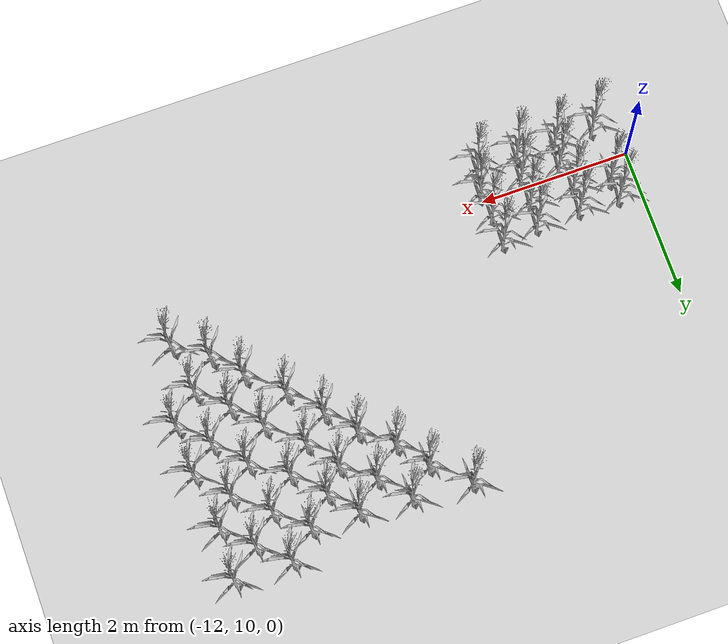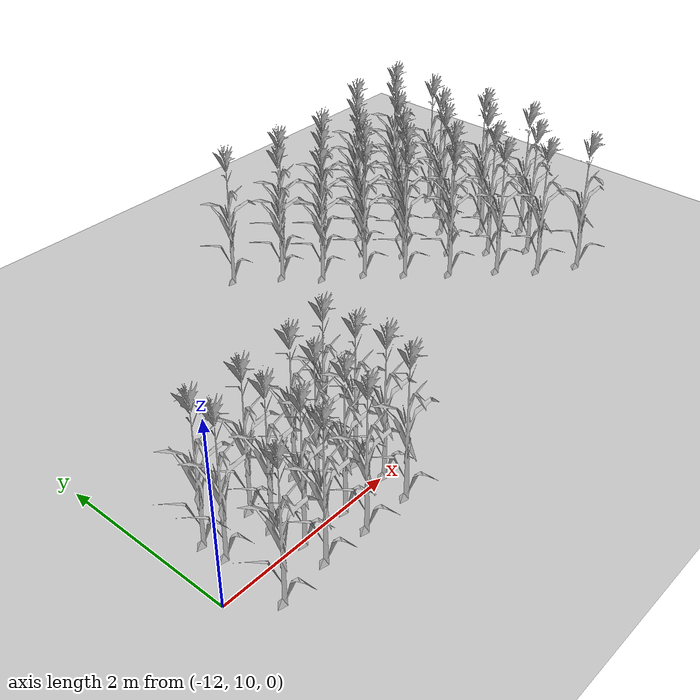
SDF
<sdf version="1.7">
 <world name="farmland_world">
  <model name="ground_plane">
   <static>1</static>
   <link name="link">
    <collision name="collision">
     <geometry><plane><normal>0 0 1</normal><size>40.0 40.0</size></plane></geometry>
     <surface><friction><ode><mu>100</mu><mu2>50</mu2></ode></friction></surface>
    </collision>
    <visual name="visual">
     <cast_shadows>0</cast_shadows>
     <geometry><plane><normal>0 0 1</normal><size>40.0 40.0</size></plane></geometry>
     <material>
      <script><uri>file://media/materials/scripts/gazebo.material</uri><name>Gazebo/Grey</name></script>
     </material>
    </visual>
   </link>
  </model>
  <model name="tree_3_29">
   <static>1</static>
   <link name="link">
    <collision name="collision">
     <geometry><mesh><uri>model://Corn_low_poly/corn.obj</uri><scale>1 1 1</scale></mesh></geometry>
     <surface><friction><ode><mu>100</mu><mu2>50</mu2></ode></friction></surface>
    </collision>
    <visual name="visual">
     <geometry><mesh><uri>model://Corn_low_poly/corn.obj</uri><scale>1 1 1</scale></mesh></geometry>
    </visual>
   </link>
   <pose>-5.566226905447198 10.631227501792312 0 0 0 0</pose>
  </model>
  <model name="tree_3_30">
   <static>1</static>
   <link name="link">
    <collision name="collision">
     <geometry><mesh><uri>model://Corn_low_poly/corn.obj</uri><scale>1 1 1</scale></mesh></geometry>
     <surface><friction><ode><mu>100</mu><mu2>50</mu2></ode></friction></surface>
    </collision>
    <visual name="visual">
     <geometry><mesh><uri>model://Corn_low_poly/corn.obj</uri><scale>1 1 1</scale></mesh></geometry>
    </visual>
   </link>
   <pose>-5.993640951671233 10.929727641760392 0 0 0 0</pose>
  </model>
  <model name="tree_3_31">
   <static>1</static>
   <link name="link">
    <collision name="collision">
     <geometry><mesh><uri>model://Corn_low_poly/corn.obj</uri><scale>1 1 1</scale></mesh></geometry>
     <surface><friction><ode><mu>100</mu><mu2>50</mu2></ode></friction></surface>
    </collision>
    <visual name="visual">
     <geometry><mesh><uri>model://Corn_low_poly/corn.obj</uri><scale>1 1 1</scale></mesh></geometry>
    </visual>
   </link>
   <pose>-6.316524884839538 11.302281419242062 0 0 0 0</pose>
  </model>
  <model name="tree_3_32">
   <static>1</static>
   <link name="link">
    <collision name="collision">
     <geometry><mesh><uri>model://Corn_low_poly/corn.obj</uri><scale>1 1 1</scale></mesh></geometry>
     <surface><friction><ode><mu>100</mu><mu2>50</mu2></ode></friction></surface>
    </collision>
    <visual name="visual">
     <geometry><mesh><uri>model://Corn_low_poly/corn.obj</uri><scale>1 1 1</scale></mesh></geometry>
    </visual>
   </link>
   <pose>-6.747003128049815 11.696521662130772 0 0 0 0</pose>
  </model>
  <model name="tree_3_33">
   <static>1</static>
   <link name="link">
    <collision name="collision">
     <geometry><mesh><uri>model://Corn_low_poly/corn.obj</uri><scale>1 1 1</scale></mesh></geometry>
     <surface><friction><ode><mu>100</mu><mu2>50</mu2></ode></friction></surface>
    </collision>
    <visual name="visual">
     <geometry><mesh><uri>model://Corn_low_poly/corn.obj</uri><scale>1 1 1</scale></mesh></geometry>
    </visual>
   </link>
   <pose>-7.107565154997983 12.100361033157853 0 0 0 0</pose>
  </model>
  <model name="tree_3_34">
   <static>1</static>
   <link name="link">
    <collision name="collision">
     <geometry><mesh><uri>model://Corn_low_poly/corn.obj</uri><scale>1 1 1</scale></mesh></geometry>
     <surface><friction><ode><mu>100</mu><mu2>50</mu2></ode></friction></surface>
    </collision>
    <visual name="visual">
     <geometry><mesh><uri>model://Corn_low_poly/corn.obj</uri><scale>1 1 1</scale></mesh></geometry>
    </visual>
   </link>
   <pose>-7.4286386103601085 12.468219442900548 0 0 0 0</pose>
  </model>
  <model name="tree_3_35">
   <static>1</static>
   <link name="link">
    <collision name="collision">
     <geometry><mesh><uri>model://Corn_low_poly/corn.obj</uri><scale>1 1 1</scale></mesh></geometry>
     <surface><friction><ode><mu>100</mu><mu2>50</mu2></ode></friction></surface>
    </collision>
    <visual name="visual">
     <geometry><mesh><uri>model://Corn_low_poly/corn.obj</uri><scale>1 1 1</scale></mesh></geometry>
    </visual>
   </link>
   <pose>-7.830219494557809 12.78490832572719 0 0 0 0</pose>
  </model>
  <model name="tree_3_36">
   <static>1</static>
   <link name="link">
    <collision name="collision">
     <geometry><mesh><uri>model://Corn_low_poly/corn.obj</uri><scale>1 1 1</scale></mesh></geometry>
     <surface><friction><ode><mu>100</mu><mu2>50</mu2></ode></friction></surface>
    </collision>
    <visual name="visual">
     <geometry><mesh><uri>model://Corn_low_poly/corn.obj</uri><scale>1 1 1</scale></mesh></geometry>
    </visual>
   </link>
   <pose>-8.129857579345042 13.171738315988067 0 0 0 0</pose>
  </model>
  <model name="tree_3_37">
   <static>1</static>
   <link name="link">
    <collision name="collision">
     <geometry><mesh><uri>model://Corn_low_poly/corn.obj</uri><scale>1 1 1</scale></mesh></geometry>
     <surface><friction><ode><mu>100</mu><mu2>50</mu2></ode></friction></surface>
    </collision>
    <visual name="visual">
     <geometry><mesh><uri>model://Corn_low_poly/corn.obj</uri><scale>1 1 1</scale></mesh></geometry>
    </visual>
   </link>
   <pose>-8.573904991052336 13.557325802934315 0 0 0 0</pose>
  </model>
  <model name="tree_3_72">
   <static>1</static>
   <link name="link">
    <collision name="collision">
     <geometry><mesh><uri>model://Corn_low_poly/corn.obj</uri><scale>1 1 1</scale></mesh></geometry>
     <surface><friction><ode><mu>100</mu><mu2>50</mu2></ode></friction></surface>
    </collision>
    <visual name="visual">
     <geometry><mesh><uri>model://Corn_low_poly/corn.obj</uri><scale>1 1 1</scale></mesh></geometry>
    </visual>
   </link>
   <pose>-5.66021034944618 11.298376605785865 0 0 0 0</pose>
  </model>
  <model name="tree_3_73">
   <static>1</static>
   <link name="link">
    <collision name="collision">
     <geometry><mesh><uri>model://Corn_low_poly/corn.obj</uri><scale>1 1 1</scale></mesh></geometry>
     <surface><friction><ode><mu>100</mu><mu2>50</mu2></ode></friction></surface>
    </collision>
    <visual name="visual">
     <geometry><mesh><uri>model://Corn_low_poly/corn.obj</uri><scale>1 1 1</scale></mesh></geometry>
    </visual>
   </link>
   <pose>-6.020705576890292 11.648894407651104 0 0 0 0</pose>
  </model>
  <model name="tree_3_74">
   <static>1</static>
   <link name="link">
    <collision name="collision">
     <geometry><mesh><uri>model://Corn_low_poly/corn.obj</uri><scale>1 1 1</scale></mesh></geometry>
     <surface><friction><ode><mu>100</mu><mu2>50</mu2></ode></friction></surface>
    </collision>
    <visual name="visual">
     <geometry><mesh><uri>model://Corn_low_poly/corn.obj</uri><scale>1 1 1</scale></mesh></geometry>
    </visual>
   </link>
   <pose>-6.344439885720137 12.013913011659145 0 0 0 0</pose>
  </model>
  <model name="tree_3_75">
   <static>1</static>
   <link name="link">
    <collision name="collision">
     <geometry><mesh><uri>model://Corn_low_poly/corn.obj</uri><scale>1 1 1</scale></mesh></geometry>
     <surface><friction><ode><mu>100</mu><mu2>50</mu2></ode></friction></surface>
    </collision>
    <visual name="visual">
     <geometry><mesh><uri>model://Corn_low_poly/corn.obj</uri><scale>1 1 1</scale></mesh></geometry>
    </visual>
   </link>
   <pose>-6.768228170915505 12.398870047057093 0 0 0 0</pose>
  </model>
  <model name="tree_3_76">
   <static>1</static>
   <link name="link">
    <collision name="collision">
     <geometry><mesh><uri>model://Corn_low_poly/corn.obj</uri><scale>1 1 1</scale></mesh></geometry>
     <surface><friction><ode><mu>100</mu><mu2>50</mu2></ode></friction></surface>
    </collision>
    <visual name="visual">
     <geometry><mesh><uri>model://Corn_low_poly/corn.obj</uri><scale>1 1 1</scale></mesh></geometry>
    </visual>
   </link>
   <pose>-7.063323399970196 12.809966135823439 0 0 0 0</pose>
  </model>
  <model name="tree_3_77">
   <static>1</static>
   <link name="link">
    <collision name="collision">
     <geometry><mesh><uri>model://Corn_low_poly/corn.obj</uri><scale>1 1 1</scale></mesh></geometry>
     <surface><friction><ode><mu>100</mu><mu2>50</mu2></ode></friction></surface>
    </collision>
    <visual name="visual">
     <geometry><mesh><uri>model://Corn_low_poly/corn.obj</uri><scale>1 1 1</scale></mesh></geometry>
    </visual>
   </link>
   <pose>-7.460518992473781 13.117609847762825 0 0 0 0</pose>
  </model>
  <model name="tree_3_78">
   <static>1</static>
   <link name="link">
    <collision name="collision">
     <geometry><mesh><uri>model://Corn_low_poly/corn.obj</uri><scale>1 1 1</scale></mesh></geometry>
     <surface><friction><ode><mu>100</mu><mu2>50</mu2></ode></friction></surface>
    </collision>
    <visual name="visual">
     <geometry><mesh><uri>model://Corn_low_poly/corn.obj</uri><scale>1 1 1</scale></mesh></geometry>
    </visual>
   </link>
   <pose>-7.7951431782939276 13.488519647040473 0 0 0 0</pose>
  </model>
  <model name="tree_3_114">
   <static>1</static>
   <link name="link">
    <collision name="collision">
     <geometry><mesh><uri>model://Corn_low_poly/corn.obj</uri><scale>1 1 1</scale></mesh></geometry>
     <surface><friction><ode><mu>100</mu><mu2>50</mu2></ode></friction></surface>
    </collision>
    <visual name="visual">
     <geometry><mesh><uri>model://Corn_low_poly/corn.obj</uri><scale>1 1 1</scale></mesh></geometry>
    </visual>
   </link>
   <pose>-5.305756932662055 11.641136277965122 0 0 0 0</pose>
  </model>
  <model name="tree_3_115">
   <static>1</static>
   <link name="link">
    <collision name="collision">
     <geometry><mesh><uri>model://Corn_low_poly/corn.obj</uri><scale>1 1 1</scale></mesh></geometry>
     <surface><friction><ode><mu>100</mu><mu2>50</mu2></ode></friction></surface>
    </collision>
    <visual name="visual">
     <geometry><mesh><uri>model://Corn_low_poly/corn.obj</uri><scale>1 1 1</scale></mesh></geometry>
    </visual>
   </link>
   <pose>-5.654780780837856 12.017618488727063 0 0 0 0</pose>
  </model>
  <model name="tree_3_116">
   <static>1</static>
   <link name="link">
    <collision name="collision">
     <geometry><mesh><uri>model://Corn_low_poly/corn.obj</uri><scale>1 1 1</scale></mesh></geometry>
     <surface><friction><ode><mu>100</mu><mu2>50</mu2></ode></friction></surface>
    </collision>
    <visual name="visual">
     <geometry><mesh><uri>model://Corn_low_poly/corn.obj</uri><scale>1 1 1</scale></mesh></geometry>
    </visual>
   </link>
   <pose>-6.002846768110236 12.406931508724687 0 0 0 0</pose>
  </model>
  <model name="tree_3_117">
   <static>1</static>
   <link name="link">
    <collision name="collision">
     <geometry><mesh><uri>model://Corn_low_poly/corn.obj</uri><scale>1 1 1</scale></mesh></geometry>
     <surface><friction><ode><mu>100</mu><mu2>50</mu2></ode></friction></surface>
    </collision>
    <visual name="visual">
     <geometry><mesh><uri>model://Corn_low_poly/corn.obj</uri><scale>1 1 1</scale></mesh></geometry>
    </visual>
   </link>
   <pose>-6.4525473365919925 12.70961789345081 0 0 0 0</pose>
  </model>
  <model name="tree_3_118">
   <static>1</static>
   <link name="link">
    <collision name="collision">
     <geometry><mesh><uri>model://Corn_low_poly/corn.obj</uri><scale>1 1 1</scale></mesh></geometry>
     <surface><friction><ode><mu>100</mu><mu2>50</mu2></ode></friction></surface>
    </collision>
    <visual name="visual">
     <geometry><mesh><uri>model://Corn_low_poly/corn.obj</uri><scale>1 1 1</scale></mesh></geometry>
    </visual>
   </link>
   <pose>-6.811864054925043 13.095852240841447 0 0 0 0</pose>
  </model>
  <model name="tree_3_119">
   <static>1</static>
   <link name="link">
    <collision name="collision">
     <geometry><mesh><uri>model://Corn_low_poly/corn.obj</uri><scale>1 1 1</scale></mesh></geometry>
     <surface><friction><ode><mu>100</mu><mu2>50</mu2></ode></friction></surface>
    </collision>
    <visual name="visual">
     <geometry><mesh><uri>model://Corn_low_poly/corn.obj</uri><scale>1 1 1</scale></mesh></geometry>
    </visual>
   </link>
   <pose>-7.116872561351904 13.438163232261958 0 0 0 0</pose>
  </model>
  <model name="tree_3_157">
   <static>1</static>
   <link name="link">
    <collision name="collision">
     <geometry><mesh><uri>model://Corn_low_poly/corn.obj</uri><scale>1 1 1</scale></mesh></geometry>
     <surface><friction><ode><mu>100</mu><mu2>50</mu2></ode></friction></surface>
    </collision>
    <visual name="visual">
     <geometry><mesh><uri>model://Corn_low_poly/corn.obj</uri><scale>1 1 1</scale></mesh></geometry>
    </visual>
   </link>
   <pose>-5.31733711746814 12.30428159257785 0 0 0 0</pose>
  </model>
  <model name="tree_3_158">
   <static>1</static>
   <link name="link">
    <collision name="collision">
     <geometry><mesh><uri>model://Corn_low_poly/corn.obj</uri><scale>1 1 1</scale></mesh></geometry>
     <surface><friction><ode><mu>100</mu><mu2>50</mu2></ode></friction></surface>
    </collision>
    <visual name="visual">
     <geometry><mesh><uri>model://Corn_low_poly/corn.obj</uri><scale>1 1 1</scale></mesh></geometry>
    </visual>
   </link>
   <pose>-5.66982689749901 12.720031070159198 0 0 0 0</pose>
  </model>
  <model name="tree_3_159">
   <static>1</static>
   <link name="link">
    <collision name="collision">
     <geometry><mesh><uri>model://Corn_low_poly/corn.obj</uri><scale>1 1 1</scale></mesh></geometry>
     <surface><friction><ode><mu>100</mu><mu2>50</mu2></ode></friction></surface>
    </collision>
    <visual name="visual">
     <geometry><mesh><uri>model://Corn_low_poly/corn.obj</uri><scale>1 1 1</scale></mesh></geometry>
    </visual>
   </link>
   <pose>-6.093701997373451 13.085284762951591 0 0 0 0</pose>
  </model>
  <model name="tree_3_160">
   <static>1</static>
   <link name="link">
    <collision name="collision">
     <geometry><mesh><uri>model://Corn_low_poly/corn.obj</uri><scale>1 1 1</scale></mesh></geometry>
     <surface><friction><ode><mu>100</mu><mu2>50</mu2></ode></friction></surface>
    </collision>
    <visual name="visual">
     <geometry><mesh><uri>model://Corn_low_poly/corn.obj</uri><scale>1 1 1</scale></mesh></geometry>
    </visual>
   </link>
   <pose>-6.484877059566016 13.43620228817392 0 0 0 0</pose>
  </model>
  <model name="tree_3_200">
   <static>1</static>
   <link name="link">
    <collision name="collision">
     <geometry><mesh><uri>model://Corn_low_poly/corn.obj</uri><scale>1 1 1</scale></mesh></geometry>
     <surface><friction><ode><mu>100</mu><mu2>50</mu2></ode></friction></surface>
    </collision>
    <visual name="visual">
     <geometry><mesh><uri>model://Corn_low_poly/corn.obj</uri><scale>1 1 1</scale></mesh></geometry>
    </visual>
   </link>
   <pose>-5.413088971875531 13.067221925163697 0 0 0 0</pose>
  </model>
  <model name="tree_3_201">
   <static>1</static>
   <link name="link">
    <collision name="collision">
     <geometry><mesh><uri>model://Corn_low_poly/corn.obj</uri><scale>1 1 1</scale></mesh></geometry>
     <surface><friction><ode><mu>100</mu><mu2>50</mu2></ode></friction></surface>
    </collision>
    <visual name="visual">
     <geometry><mesh><uri>model://Corn_low_poly/corn.obj</uri><scale>1 1 1</scale></mesh></geometry>
    </visual>
   </link>
   <pose>-5.760990346641551 13.412755371145725 0 0 0 0</pose>
  </model>
  <model name="tree_3_202">
   <static>1</static>
   <link name="link">
    <collision name="collision">
     <geometry><mesh><uri>model://Corn_low_poly/corn.obj</uri><scale>1 1 1</scale></mesh></geometry>
     <surface><friction><ode><mu>100</mu><mu2>50</mu2></ode></friction></surface>
    </collision>
    <visual name="visual">
     <geometry><mesh><uri>model://Corn_low_poly/corn.obj</uri><scale>1 1 1</scale></mesh></geometry>
    </visual>
   </link>
   <pose>-6.130285144736973 13.745223273850677 0 0 0 0</pose>
  </model>
  <model name="tree_3_243">
   <static>1</static>
   <link name="link">
    <collision name="collision">
     <geometry><mesh><uri>model://Corn_low_poly/corn.obj</uri><scale>1 1 1</scale></mesh></geometry>
     <surface><friction><ode><mu>100</mu><mu2>50</mu2></ode></friction></surface>
    </collision>
    <visual name="visual">
     <geometry><mesh><uri>model://Corn_low_poly/corn.obj</uri><scale>1 1 1</scale></mesh></geometry>
    </visual>
   </link>
   <pose>-5.376575922445346 13.72451553327466 0 0 0 0</pose>
  </model>
  <model name="tree_3_3025">
   <static>1</static>
   <link name="link">
    <collision name="collision">
     <geometry><mesh><uri>model://Corn_low_poly/corn.obj</uri><scale>1 1 1</scale></mesh></geometry>
     <surface><friction><ode><mu>100</mu><mu2>50</mu2></ode></friction></surface>
    </collision>
    <visual name="visual">
     <geometry><mesh><uri>model://Corn_low_poly/corn.obj</uri><scale>1 1 1</scale></mesh></geometry>
    </visual>
   </link>
   <pose>-10.034378282917151 9.678882922015347 0 0 0 0</pose>
  </model>
  <model name="tree_3_3026">
   <static>1</static>
   <link name="link">
    <collision name="collision">
     <geometry><mesh><uri>model://Corn_low_poly/corn.obj</uri><scale>1 1 1</scale></mesh></geometry>
     <surface><friction><ode><mu>100</mu><mu2>50</mu2></ode></friction></surface>
    </collision>
    <visual name="visual">
     <geometry><mesh><uri>model://Corn_low_poly/corn.obj</uri><scale>1 1 1</scale></mesh></geometry>
    </visual>
   </link>
   <pose>-10.578567021467135 9.681147361031636 0 0 0 0</pose>
  </model>
  <model name="tree_3_3027">
   <static>1</static>
   <link name="link">
    <collision name="collision">
     <geometry><mesh><uri>model://Corn_low_poly/corn.obj</uri><scale>1 1 1</scale></mesh></geometry>
     <surface><friction><ode><mu>100</mu><mu2>50</mu2></ode></friction></surface>
    </collision>
    <visual name="visual">
     <geometry><mesh><uri>model://Corn_low_poly/corn.obj</uri><scale>1 1 1</scale></mesh></geometry>
    </visual>
   </link>
   <pose>-11.090187220730616 9.696585694044176 0 0 0 0</pose>
  </model>
  <model name="tree_3_3028">
   <static>1</static>
   <link name="link">
    <collision name="collision">
     <geometry><mesh><uri>model://Corn_low_poly/corn.obj</uri><scale>1 1 1</scale></mesh></geometry>
     <surface><friction><ode><mu>100</mu><mu2>50</mu2></ode></friction></surface>
    </collision>
    <visual name="visual">
     <geometry><mesh><uri>model://Corn_low_poly/corn.obj</uri><scale>1 1 1</scale></mesh></geometry>
    </visual>
   </link>
   <pose>-11.632278873181018 9.654379651685563 0 0 0 0</pose>
  </model>
  <model name="tree_3_3039">
   <static>1</static>
   <link name="link">
    <collision name="collision">
     <geometry><mesh><uri>model://Corn_low_poly/corn.obj</uri><scale>1 1 1</scale></mesh></geometry>
     <surface><friction><ode><mu>100</mu><mu2>50</mu2></ode></friction></surface>
    </collision>
    <visual name="visual">
     <geometry><mesh><uri>model://Corn_low_poly/corn.obj</uri><scale>1 1 1</scale></mesh></geometry>
    </visual>
   </link>
   <pose>-9.953298060502263 10.01020843111102 0 0 0 0</pose>
  </model>
  <model name="tree_3_3040">
   <static>1</static>
   <link name="link">
    <collision name="collision">
     <geometry><mesh><uri>model://Corn_low_poly/corn.obj</uri><scale>1 1 1</scale></mesh></geometry>
     <surface><friction><ode><mu>100</mu><mu2>50</mu2></ode></friction></surface>
    </collision>
    <visual name="visual">
     <geometry><mesh><uri>model://Corn_low_poly/corn.obj</uri><scale>1 1 1</scale></mesh></geometry>
    </visual>
   </link>
   <pose>-10.52601909258951 9.981868779646206 0 0 0 0</pose>
  </model>
  <model name="tree_3_3041">
   <static>1</static>
   <link name="link">
    <collision name="collision">
     <geometry><mesh><uri>model://Corn_low_poly/corn.obj</uri><scale>1 1 1</scale></mesh></geometry>
     <surface><friction><ode><mu>100</mu><mu2>50</mu2></ode></friction></surface>
    </collision>
    <visual name="visual">
     <geometry><mesh><uri>model://Corn_low_poly/corn.obj</uri><scale>1 1 1</scale></mesh></geometry>
    </visual>
   </link>
   <pose>-11.051081097705023 9.983880307368269 0 0 0 0</pose>
  </model>
  <model name="tree_3_3053">
   <static>1</static>
   <link name="link">
    <collision name="collision">
     <geometry><mesh><uri>model://Corn_low_poly/corn.obj</uri><scale>1 1 1</scale></mesh></geometry>
     <surface><friction><ode><mu>100</mu><mu2>50</mu2></ode></friction></surface>
    </collision>
    <visual name="visual">
     <geometry><mesh><uri>model://Corn_low_poly/corn.obj</uri><scale>1 1 1</scale></mesh></geometry>
    </visual>
   </link>
   <pose>-10.001382458141691 10.327175200475809 0 0 0 0</pose>
  </model>
  <model name="tree_3_3054">
   <static>1</static>
   <link name="link">
    <collision name="collision">
     <geometry><mesh><uri>model://Corn_low_poly/corn.obj</uri><scale>1 1 1</scale></mesh></geometry>
     <surface><friction><ode><mu>100</mu><mu2>50</mu2></ode></friction></surface>
    </collision>
    <visual name="visual">
     <geometry><mesh><uri>model://Corn_low_poly/corn.obj</uri><scale>1 1 1</scale></mesh></geometry>
    </visual>
   </link>
   <pose>-10.5278400473401 10.324061632598921 0 0 0 0</pose>
  </model>
  <model name="tree_3_3055">
   <static>1</static>
   <link name="link">
    <collision name="collision">
     <geometry><mesh><uri>model://Corn_low_poly/corn.obj</uri><scale>1 1 1</scale></mesh></geometry>
     <surface><friction><ode><mu>100</mu><mu2>50</mu2></ode></friction></surface>
    </collision>
    <visual name="visual">
     <geometry><mesh><uri>model://Corn_low_poly/corn.obj</uri><scale>1 1 1</scale></mesh></geometry>
    </visual>
   </link>
   <pose>-11.120012153555072 10.323008464708462 0 0 0 0</pose>
  </model>
  <model name="tree_3_3056">
   <static>1</static>
   <link name="link">
    <collision name="collision">
     <geometry><mesh><uri>model://Corn_low_poly/corn.obj</uri><scale>1 1 1</scale></mesh></geometry>
     <surface><friction><ode><mu>100</mu><mu2>50</mu2></ode></friction></surface>
    </collision>
    <visual name="visual">
     <geometry><mesh><uri>model://Corn_low_poly/corn.obj</uri><scale>1 1 1</scale></mesh></geometry>
    </visual>
   </link>
   <pose>-11.616731411480224 10.378939977007926 0 0 0 0</pose>
  </model>
  <model name="tree_3_3067">
   <static>1</static>
   <link name="link">
    <collision name="collision">
     <geometry><mesh><uri>model://Corn_low_poly/corn.obj</uri><scale>1 1 1</scale></mesh></geometry>
     <surface><friction><ode><mu>100</mu><mu2>50</mu2></ode></friction></surface>
    </collision>
    <visual name="visual">
     <geometry><mesh><uri>model://Corn_low_poly/corn.obj</uri><scale>1 1 1</scale></mesh></geometry>
    </visual>
   </link>
   <pose>-10.014102140876984 10.713638431781728 0 0 0 0</pose>
  </model>
  <model name="tree_3_3068">
   <static>1</static>
   <link name="link">
    <collision name="collision">
     <geometry><mesh><uri>model://Corn_low_poly/corn.obj</uri><scale>1 1 1</scale></mesh></geometry>
     <surface><friction><ode><mu>100</mu><mu2>50</mu2></ode></friction></surface>
    </collision>
    <visual name="visual">
     <geometry><mesh><uri>model://Corn_low_poly/corn.obj</uri><scale>1 1 1</scale></mesh></geometry>
    </visual>
   </link>
   <pose>-10.502709263021403 10.64609480555467 0 0 0 0</pose>
  </model>
  <model name="tree_3_3069">
   <static>1</static>
   <link name="link">
    <collision name="collision">
     <geometry><mesh><uri>model://Corn_low_poly/corn.obj</uri><scale>1 1 1</scale></mesh></geometry>
     <surface><friction><ode><mu>100</mu><mu2>50</mu2></ode></friction></surface>
    </collision>
    <visual name="visual">
     <geometry><mesh><uri>model://Corn_low_poly/corn.obj</uri><scale>1 1 1</scale></mesh></geometry>
    </visual>
   </link>
   <pose>-11.094422096236233 10.626153797811762 0 0 0 0</pose>
  </model>
  <model name="tree_3_3070">
   <static>1</static>
   <link name="link">
    <collision name="collision">
     <geometry><mesh><uri>model://Corn_low_poly/corn.obj</uri><scale>1 1 1</scale></mesh></geometry>
     <surface><friction><ode><mu>100</mu><mu2>50</mu2></ode></friction></surface>
    </collision>
    <visual name="visual">
     <geometry><mesh><uri>model://Corn_low_poly/corn.obj</uri><scale>1 1 1</scale></mesh></geometry>
    </visual>
   </link>
   <pose>-11.638894466884887 10.642298378199749 0 0 0 0</pose>
  </model>
 </world>
</sdf>
